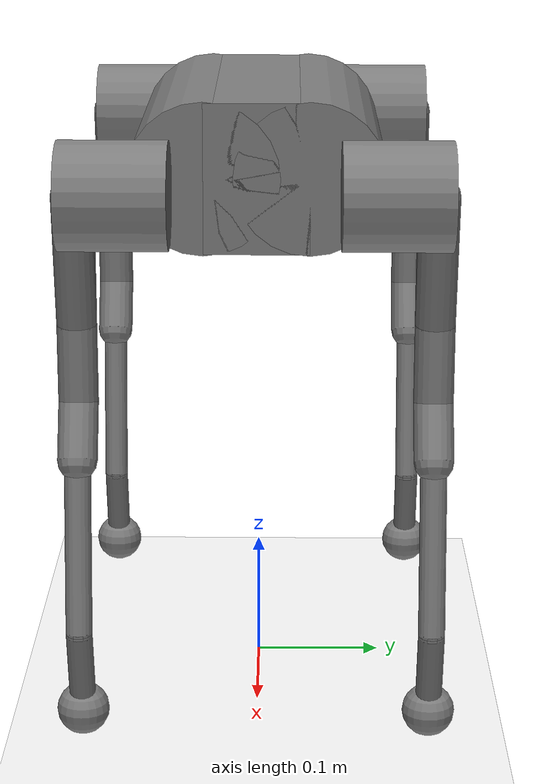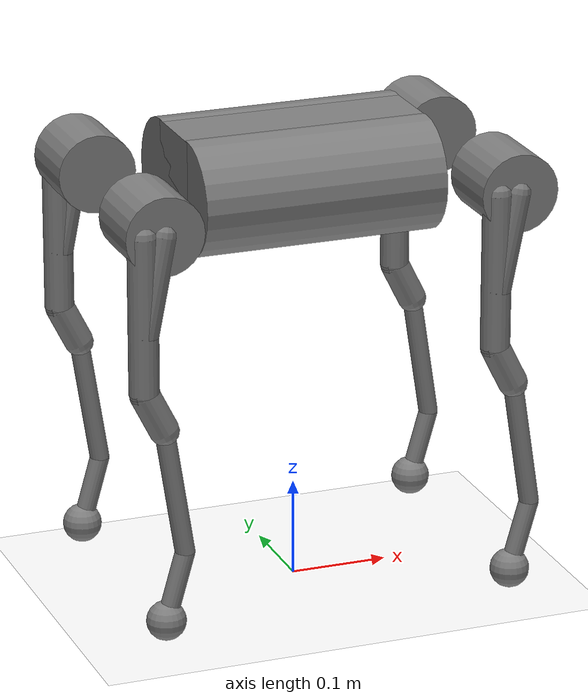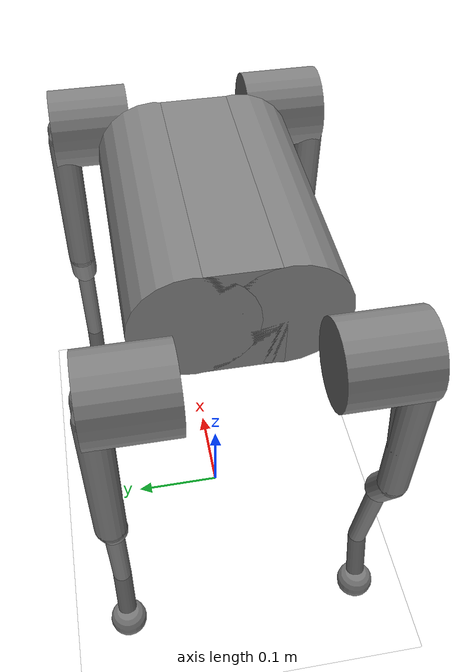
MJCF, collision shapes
<mujoco model="a1 feetonly flat terrain scene">
  <include file="a1_mjx_feetonly.xml"/>

  <statistic center="0 0 0.1" extent="0.8" meansize="0.04"/>

  <visual>
    <headlight diffuse=".8 .8 .8" ambient=".2 .2 .2" specular="1 1 1"/>
    <rgba force="1 0 0 1"/>
    <global azimuth="120" elevation="-20"/>
    <map force="0.01"/>
    <scale forcewidth="0.3" contactwidth="0.5" contactheight="0.2"/>
    <quality shadowsize="8192"/>
  </visual>

  <asset>
    <texture type="skybox" builtin="gradient" rgb1="1 1 1" rgb2="1 1 1" width="800" height="800"/>
    <texture type="2d" name="groundplane" builtin="checker" mark="edge" rgb1="1 1 1" rgb2="1 1 1" markrgb="0 0 0"
      width="300" height="300"/>
    <material name="groundplane" texture="groundplane" texuniform="true" texrepeat="5 5" reflectance="0"/>
  </asset>

  <worldbody>
    <!-- Same floor as Playground's Go1 flat scene: friction 0.6, only feet collide with it. -->
    <geom name="floor" size="0 0 0.01" type="plane" material="groundplane" contype="1" conaffinity="0" priority="1"
      friction="0.6" condim="3"/>
  </worldbody>

  <keyframe>
    <!-- Menagerie A1 "home": same joint angles as Go1 (0, 0.9, -1.8); legs are 0.2 m
         instead of 0.213 m, so the trunk stands at 0.27 m instead of 0.278 m. -->
    <key name="home" qpos="
    0 0 0.27
    1 0 0 0
    0.1 0.9 -1.8
    -0.1 0.9 -1.8
    0.1 0.9 -1.8
    -0.1 0.9 -1.8"
      ctrl="0.1 0.9 -1.8 -0.1 0.9 -1.8 0.1 0.9 -1.8 -0.1 0.9 -1.8"/>
  </keyframe>
</mujoco>

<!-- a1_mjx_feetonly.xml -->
<mujoco model="a1 feet only">
  <compiler angle="radian" meshdir="assets" autolimits="true"/>

  <option iterations="1" ls_iterations="5" timestep="0.004" integrator="Euler">
    <flag eulerdamp="disable"/>
  </option>

  <default>
    <default class="a1">
      <!-- This globally disables all collisions; feet re-enable theirs below. -->
      <geom condim="1" contype="0" conaffinity="0"/>
      <joint axis="0 1 0" armature="0.005" damping="0.5"/>
      <!-- A1 actuators: 33.5 Nm on all 12 joints (Go1: 23.7 hip/thigh, 35.55 knee). -->
      <position forcerange="-33.5 33.5" inheritrange="1" kp="35"/>
      <default class="abduction">
        <joint axis="1 0 0" range="-0.802851 0.802851" frictionloss="0.3"/>
      </default>
      <default class="hip">
        <joint range="-1.0472 4.18879" frictionloss="0.3"/>
      </default>
      <default class="knee">
        <joint range="-2.69653 -0.916298" frictionloss="1.0"/>
      </default>
      <default class="visual">
        <geom type="mesh" contype="0" conaffinity="0" group="2" material="dark"/>
      </default>
      <default class="collision">
        <geom group="3" type="capsule"/>
        <default class="hip_left">
          <geom size="0.04 0.04" quat="1 1 0 0" type="cylinder" pos="0 0.055 0"/>
        </default>
        <default class="hip_right">
          <geom size="0.04 0.04" quat="1 1 0 0" type="cylinder" pos="0 -0.055 0"/>
        </default>
        <default class="thigh1">
          <geom size="0.015" fromto="-0.02 0 0 -0.02 0 -0.16"/>
        </default>
        <default class="thigh2">
          <geom size="0.015" fromto="0 0 0 -0.02 0 -0.1"/>
        </default>
        <default class="thigh3">
          <geom size="0.015" fromto="-0.02 0 -0.16 0 0 -0.2"/>
        </default>
        <default class="calf1">
          <geom size="0.01" fromto="0 0 0 0.02 0 -0.13"/>
        </default>
        <default class="calf2">
          <geom size="0.01" fromto="0.02 0 -0.13 0 0 -0.2"/>
        </default>
        <default class="foot">
          <!-- Feet collide with the floor (contype=1, conaffinity=0) only. -->
          <geom type="sphere" size="0.02" pos="0 0 -0.2" solimp="0.9 .95 0.02" contype="0" conaffinity="1"/>
        </default>
      </default>
    </default>
  </default>

  <asset>
    <material name="dark" rgba="0.2 0.2 0.2 1"/>
    <mesh class="a1" file="trunk.obj"/>
    <mesh class="a1" file="hip.obj"/>
    <mesh class="a1" file="thigh_mirror.obj"/>
    <mesh class="a1" file="calf.obj"/>
    <mesh class="a1" file="thigh.obj"/>
  </asset>

  <worldbody>
    <light name="spotlight" mode="targetbodycom" target="trunk" pos="3 0 4"/>
    <body name="trunk" pos="0 0 0.43" childclass="a1">
      <camera name="track" pos="0.846 -1.3 0.316" xyaxes="0.866 0.500 0.000 -0.171 0.296 0.940" mode="trackcom"/>
      <camera name="top" pos="-1 0 1" xyaxes="0 -1 0 0.7 0 0.7" mode="trackcom"/>
      <camera name="side" pos="0 -1 .3" xyaxes="1 0 0 0 1 2" mode="trackcom"/>
      <camera name="back" pos="-1 0 .3" xyaxes="0 -1 0 1 0 2" mode="trackcom"/>
      <site name="head" pos="0.3 0 0" rgba="1 0 0 1" size="0.02" group="5"/>
      <inertial mass="4.713" pos="0 0.0041 -0.0005"
        fullinertia="0.0158533 0.0377999 0.0456542 -3.66e-05 -6.11e-05 -2.75e-05"/>
      <freejoint/>
      <geom class="visual" mesh="trunk"/>
      <geom class="collision" size="0.125 0.04 0.057" type="box"/>
      <geom class="collision" quat="1 0 1 0" pos="0 -0.04 0" size="0.058 0.125" type="cylinder"/>
      <geom class="collision" quat="1 0 1 0" pos="0 +0.04 0" size="0.058 0.125" type="cylinder"/>
      <!-- Menagerie's A1 has no IMU site; Playground's Go1 code needs one. Trunk origin. -->
      <site name="imu" pos="0 0 0" group="5"/>
      <body name="FR_hip" pos="0.183 -0.047 0">
        <inertial mass="0.696" pos="-0.003311 -0.000635 3.1e-05" quat="0.507528 0.506268 0.491507 0.494499"
          diaginertia="0.000807752 0.00055293 0.000468983"/>
        <joint class="abduction" name="FR_hip_joint"/>
        <geom class="visual" mesh="hip" quat="0 1 0 0"/>
        <geom class="hip_right"/>
        <body name="FR_thigh" pos="0 -0.08505 0">
          <inertial mass="1.013" pos="-0.003237 0.022327 -0.027326" quat="0.999125 -0.00256393 -0.0409531 -0.00806091"
            diaginertia="0.00555739 0.00513936 0.00133944"/>
          <joint class="hip" name="FR_thigh_joint"/>
          <geom class="visual" mesh="thigh_mirror"/>
          <geom class="thigh1"/>
          <geom class="thigh2"/>
          <geom class="thigh3"/>
          <body name="FR_calf" pos="0 0 -0.2">
            <inertial mass="0.226" pos="0.00472659 0 -0.131975" quat="0.706886 0.017653 0.017653 0.706886"
              diaginertia="0.00340344 0.00339393 3.54834e-05"/>
            <joint class="knee" name="FR_calf_joint"/>
            <geom class="visual" mesh="calf"/>
            <geom class="calf1"/>
            <geom class="calf2"/>
            <geom name="FR" class="foot"/>
            <site name="FR" pos="0 0 -0.2" type="sphere" size="0.02" group="5"/>
          </body>
        </body>
      </body>
      <body name="FL_hip" pos="0.183 0.047 0">
        <inertial mass="0.696" pos="-0.003311 0.000635 3.1e-05" quat="0.494499 0.491507 0.506268 0.507528"
          diaginertia="0.000807752 0.00055293 0.000468983"/>
        <joint class="abduction" name="FL_hip_joint"/>
        <geom class="visual" mesh="hip"/>
        <geom class="hip_left"/>
        <body name="FL_thigh" pos="0 0.08505 0">
          <inertial mass="1.013" pos="-0.003237 -0.022327 -0.027326" quat="0.999125 0.00256393 -0.0409531 0.00806091"
            diaginertia="0.00555739 0.00513936 0.00133944"/>
          <joint class="hip" name="FL_thigh_joint"/>
          <geom class="visual" mesh="thigh"/>
          <geom class="thigh1"/>
          <geom class="thigh2"/>
          <geom class="thigh3"/>
          <body name="FL_calf" pos="0 0 -0.2">
            <inertial mass="0.226" pos="0.00472659 0 -0.131975" quat="0.706886 0.017653 0.017653 0.706886"
              diaginertia="0.00340344 0.00339393 3.54834e-05"/>
            <joint class="knee" name="FL_calf_joint"/>
            <geom class="visual" mesh="calf"/>
            <geom class="calf1"/>
            <geom class="calf2"/>
            <geom name="FL" class="foot"/>
            <site name="FL" pos="0 0 -0.2" type="sphere" size="0.02" group="5"/>
          </body>
        </body>
      </body>
      <body name="RR_hip" pos="-0.183 -0.047 0">
        <inertial mass="0.696" pos="0.003311 -0.000635 3.1e-05" quat="0.491507 0.494499 0.507528 0.506268"
          diaginertia="0.000807752 0.00055293 0.000468983"/>
        <joint class="abduction" name="RR_hip_joint"/>
        <geom class="visual" quat="0 0 0 -1" mesh="hip"/>
        <geom class="hip_right"/>
        <body name="RR_thigh" pos="0 -0.08505 0">
          <inertial mass="1.013" pos="-0.003237 0.022327 -0.027326" quat="0.999125 -0.00256393 -0.0409531 -0.00806091"
            diaginertia="0.00555739 0.00513936 0.00133944"/>
          <joint class="hip" name="RR_thigh_joint"/>
          <geom class="visual" mesh="thigh_mirror"/>
          <geom class="thigh1"/>
          <geom class="thigh2"/>
          <geom class="thigh3"/>
          <body name="RR_calf" pos="0 0 -0.2">
            <inertial mass="0.226" pos="0.00472659 0 -0.131975" quat="0.706886 0.017653 0.017653 0.706886"
              diaginertia="0.00340344 0.00339393 3.54834e-05"/>
            <joint class="knee" name="RR_calf_joint"/>
            <geom class="visual" mesh="calf"/>
            <geom class="calf1"/>
            <geom class="calf2"/>
            <geom name="RR" class="foot"/>
            <site name="RR" pos="0 0 -0.2" type="sphere" size="0.02" group="5"/>
          </body>
        </body>
      </body>
      <body name="RL_hip" pos="-0.183 0.047 0">
        <inertial mass="0.696" pos="0.003311 0.000635 3.1e-05" quat="0.506268 0.507528 0.494499 0.491507"
          diaginertia="0.000807752 0.00055293 0.000468983"/>
        <joint class="abduction" name="RL_hip_joint"/>
        <geom class="visual" quat="0 0 1 0" mesh="hip"/>
        <geom class="hip_left"/>
        <body name="RL_thigh" pos="0 0.08505 0">
          <inertial mass="1.013" pos="-0.003237 -0.022327 -0.027326" quat="0.999125 0.00256393 -0.0409531 0.00806091"
            diaginertia="0.00555739 0.00513936 0.00133944"/>
          <joint class="hip" name="RL_thigh_joint"/>
          <geom class="visual" mesh="thigh"/>
          <geom class="thigh1"/>
          <geom class="thigh2"/>
          <geom class="thigh3"/>
          <body name="RL_calf" pos="0 0 -0.2">
            <inertial mass="0.226" pos="0.00472659 0 -0.131975" quat="0.706886 0.017653 0.017653 0.706886"
              diaginertia="0.00340344 0.00339393 3.54834e-05"/>
            <joint class="knee" name="RL_calf_joint"/>
            <geom class="visual" mesh="calf"/>
            <geom class="calf1"/>
            <geom class="calf2"/>
            <geom name="RL" class="foot"/>
            <site name="RL" pos="0 0 -0.2" type="sphere" size="0.02" group="5"/>
          </body>
        </body>
      </body>
    </body>
  </worldbody>

  <actuator>
    <position class="abduction" name="FR_hip" joint="FR_hip_joint"/>
    <position class="hip" name="FR_thigh" joint="FR_thigh_joint"/>
    <position class="knee" name="FR_calf" joint="FR_calf_joint"/>
    <position class="abduction" name="FL_hip" joint="FL_hip_joint"/>
    <position class="hip" name="FL_thigh" joint="FL_thigh_joint"/>
    <position class="knee" name="FL_calf" joint="FL_calf_joint"/>
    <position class="abduction" name="RR_hip" joint="RR_hip_joint"/>
    <position class="hip" name="RR_thigh" joint="RR_thigh_joint"/>
    <position class="knee" name="RR_calf" joint="RR_calf_joint"/>
    <position class="abduction" name="RL_hip" joint="RL_hip_joint"/>
    <position class="hip" name="RL_thigh" joint="RL_thigh_joint"/>
    <position class="knee" name="RL_calf" joint="RL_calf_joint"/>
  </actuator>

  <sensor>
    <gyro site="imu" name="gyro"/>
    <velocimeter site="imu" name="local_linvel"/>
    <accelerometer site="imu" name="accelerometer"/>
    <framepos objtype="site" objname="imu" name="position"/>
    <framezaxis objtype="site" objname="imu" name="upvector"/>
    <framexaxis objtype="site" objname="imu" name="forwardvector"/>
    <framelinvel objtype="site" objname="imu" name="global_linvel"/>
    <frameangvel objtype="site" objname="imu" name="global_angvel"/>
    <framequat objtype="site" objname="imu" name="orientation"/>
    <framelinvel objtype="site" objname="FR" name="FR_global_linvel"/>
    <framelinvel objtype="site" objname="FL" name="FL_global_linvel"/>
    <framelinvel objtype="site" objname="RR" name="RR_global_linvel"/>
    <framelinvel objtype="site" objname="RL" name="RL_global_linvel"/>
    <framepos objtype="site" objname="FR" name="FR_pos" reftype="site" refname="imu"/>
    <framepos objtype="site" objname="FL" name="FL_pos" reftype="site" refname="imu"/>
    <framepos objtype="site" objname="RR" name="RR_pos" reftype="site" refname="imu"/>
    <framepos objtype="site" objname="RL" name="RL_pos" reftype="site" refname="imu"/>
    <!-- foot/floor contact flags, as in Playground's sensor_feet.xml -->
    <contact name="FR_floor_found" geom1="FR" geom2="floor" reduce="mindist" num="1" data="found"/>
    <contact name="FL_floor_found" geom1="FL" geom2="floor" reduce="mindist" num="1" data="found"/>
    <contact name="RL_floor_found" geom1="RL" geom2="floor" reduce="mindist" num="1" data="found"/>
    <contact name="RR_floor_found" geom1="RR" geom2="floor" reduce="mindist" num="1" data="found"/>
  </sensor>
</mujoco>
